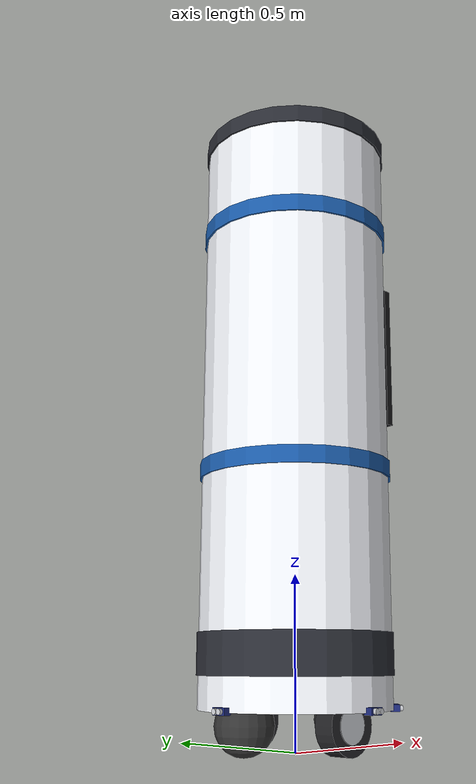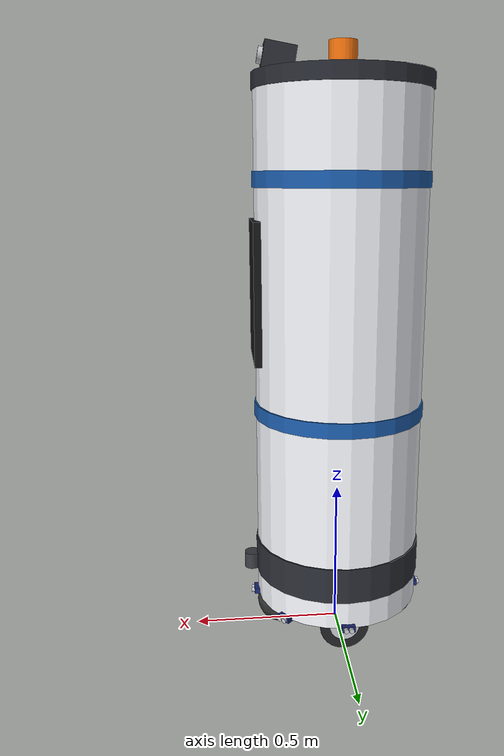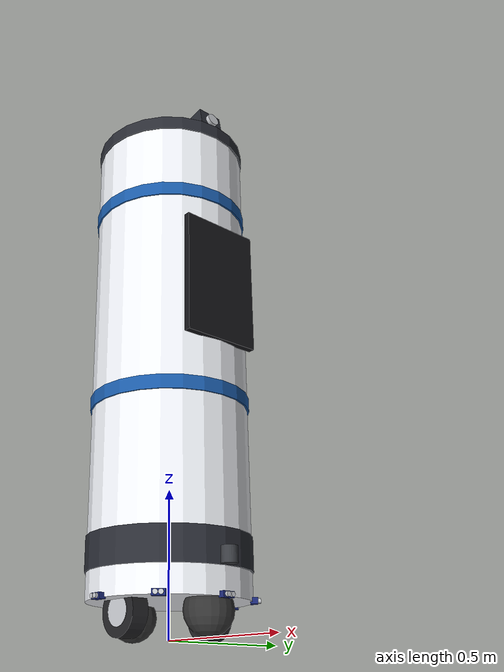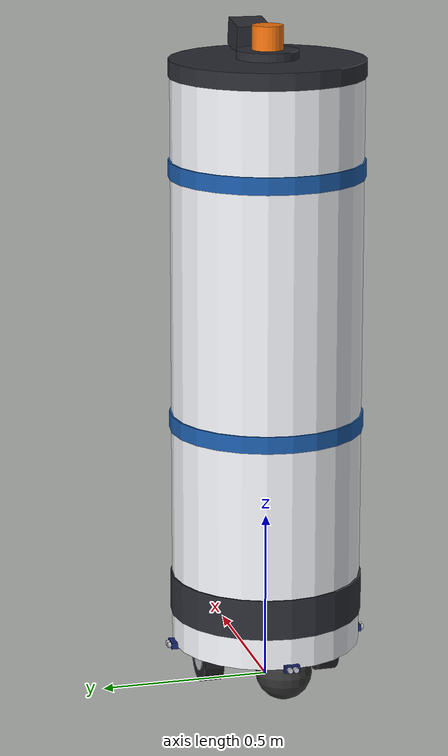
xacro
<?xml version="1.0"?>
<robot xmlns:xacro="http://www.ros.org/wiki/xacro" name="databot">
<!-- 基础部分（含全局材质调色板） -->
<xacro:include filename="$(find datarobot_description)/urdf/databot/base.urdf.xacro"/>
<!-- 传感器部分 -->
<xacro:include filename="$(find datarobot_description)/urdf/databot/senser/imu.urdf.xacro"/>
<xacro:include filename="$(find datarobot_description)/urdf/databot/senser/camera.urdf.xacro"/>
<xacro:include filename="$(find datarobot_description)/urdf/databot/senser/laser.urdf.xacro"/>
<xacro:include filename="$(find datarobot_description)/urdf/databot/senser/ultrasonic.urdf.xacro"/>
<!-- 执行器部分 -->
<xacro:include filename="$(find datarobot_description)/urdf/databot/actuator/wheel.urdf.xacro"/>
<xacro:include filename="$(find datarobot_description)/urdf/databot/actuator/caster.urdf.xacro"/>
<!-- Gazebo 仿真配置 -->
<xacro:include filename="$(find datarobot_description)/urdf/databot/gazebo.urdf.xacro"/>

<!-- 轮子几何在此统一定义, base 与 wheel 共用, 避免两处不一致导致模型悬空或陷地 -->
<xacro:property name="wheel_radius" value="0.083"/>
<xacro:property name="wheel_z" value="-0.17"/>

<!-- 地平面: base_link 高出地面的高度. 只在这里算一次, 再传给 base_xacro 和
     caster_xacro, 保证"地面在哪"只有一个真值来源 -->
<xacro:property name="base_height" value="${-wheel_z + wheel_radius}"/>

<!-- 从动轮半径. 与 wheel_radius 解耦: 只要关节 z 按
     (caster_radius - base_height) 推导, 半径取任何值都能触地,
     不必等于驱动轮半径 -->
<xacro:property name="caster_radius" value="0.083"/>

<xacro:base_xacro length="1.70" radius="0.28" base_height="${base_height}"/>

<!-- IMU：装在车体中轴顶部内腔（实机对应主控板上方的 IMU 模块） -->
<xacro:imu_xacro xyz="0.0 0.0 0.02"/>

<!-- 顶部云台相机：顶盖前沿，下俯 10°。camera_enabled:=false 可关掉传感器渲染省算力 -->
<xacro:arg name="camera_enabled" default="true"/>
<xacro:camera_xacro xyz="0.20 0.0 1.656" rpy="0.0 -0.17 0.0" enabled="$(arg camera_enabled)"/>

<!-- 激光雷达：车头外伸支架上，x=0.30 在车体半径(0.28)之外，避免自遮挡 -->
<xacro:laser_xacro xyz="0.30 0.0 0.0"/>

<!-- 超声波 ×6：z=-0.13 → 离地约 0.12 m，专管激光盲区以下的低矮障碍
     （车位挡轮杆、路缘等）。前 3 + 左右各 1 + 后 1，覆盖全向 -->
<xacro:ultrasonic_xacro name="us_front"        xyz="0.283 0.0 -0.13"    yaw="0.0"/>
<xacro:ultrasonic_xacro name="us_front_left"   xyz="0.20 0.20 -0.13"    yaw="0.7854"/>
<xacro:ultrasonic_xacro name="us_front_right"  xyz="0.20 -0.20 -0.13"   yaw="-0.7854"/>
<xacro:ultrasonic_xacro name="us_left"         xyz="0.0 0.283 -0.13"    yaw="1.5708"/>
<xacro:ultrasonic_xacro name="us_right"        xyz="0.0 -0.283 -0.13"   yaw="-1.5708"/>
<xacro:ultrasonic_xacro name="us_rear"         xyz="-0.283 0.0 -0.13"   yaw="3.14159"/>

<xacro:wheel_xacro wheel_name="left_wheel"
                   xyz="0 0.179 ${wheel_z}" radius="${wheel_radius}"/>
<xacro:wheel_xacro wheel_name="right_wheel"
                   xyz="0 -0.179 ${wheel_z}" radius="${wheel_radius}"/>

<!-- 从动轮(前后支撑). z 由宏内部按 caster_radius - base_height 推导, 这里只给
     平面位置 xy. 前后必须传同样的参数, 否则两个轮子不落同一地平面 -->
<xacro:caster_xacro caster_name="front_caster"
                    xy="0.20 0.0"
                    caster_radius="${caster_radius}" base_height="${base_height}"/>
<xacro:caster_xacro caster_name="rear_caster"
                    xy="-0.20 0.0"
                    caster_radius="${caster_radius}" base_height="${base_height}"/>

<!-- 调用 Gazebo 配置宏（仅在仿真时使用）-->
<xacro:gazebo_diff_drive/>
    <xacro:gazebo_joint_state_publisher/>

</robot>

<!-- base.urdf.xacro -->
<robot xmlns:xacro="http://www.ros.org/wiki/xacro" >
    <!-- 全局材质调色板：所有子文件只按名字引用，颜色改这一处即可。
         注意 alpha 全部为 1.0：半透明车体会让 Gazebo 里的渲染出现透视串面 -->
    <material name="mat_body">
        <color rgba="0.92 0.93 0.95 1.0"/>   <!-- 珠白车身 -->
    </material>
    <material name="mat_accent">
        <color rgba="0.10 0.35 0.65 1.0"/>   <!-- 科技蓝饰环 -->
    </material>
    <material name="mat_dark">
        <color rgba="0.16 0.17 0.20 1.0"/>   <!-- 深灰：裙边/顶盖/传感器舱 -->
    </material>
    <material name="mat_orange">
        <color rgba="0.95 0.45 0.05 1.0"/>   <!-- 警示橙：顶部信标 -->
    </material>
    <material name="mat_panel">
        <color rgba="0.08 0.08 0.09 1.0"/>   <!-- 前脸面板 -->
    </material>
    <material name="mat_silver">
        <color rgba="0.75 0.76 0.78 1.0"/>   <!-- 轮毂/镜头圈 -->
    </material>
    <material name="mat_tire">
        <color rgba="0.13 0.13 0.14 1.0"/>   <!-- 橡胶轮胎 -->
    </material>
    <material name="mat_lidar">
        <color rgba="0.22 0.23 0.25 1.0"/>   <!-- 激光雷达 -->
    </material>
    <material name="mat_imu">
        <color rgba="0.00 0.40 0.20 1.0"/>   <!-- IMU 模块 PCB 绿 -->
    </material>
    <material name="mat_us">
        <color rgba="0.10 0.15 0.45 1.0"/>   <!-- 超声波模块 深蓝 -->
    </material>

    <!-- base_height: base_link 高出地面的高度, 由 datarobot.urdf.xacro 统一算出并传入
         (= -wheel_z + wheel_radius). 地平面只在那一处决定, 从动轮等部件的 z
         都相对它推导, 避免多处各写一份导致模型悬空或陷地 -->
    <xacro:macro name="base_xacro" params="length radius base_height">
        <!-- 地面投影坐标系, 整个模型的根.
             里程计发布 odom -> base_footprint, 缺了它 TF 树会断成两截 -->
        <link name="base_footprint"/>

        <joint name="base_joint" type="fixed">
            <parent link="base_footprint"/>
            <child link="base_link"/>
            <!-- 轮子底部即地面: base_link 高出地面 base_height -->
            <origin xyz="0.0 0.0 ${base_height}" rpy="0.0 0.0 0.0"/>
        </joint>

        <!-- 机器人的身体部分 -->
        <link name="base_link">
            <!-- ===== 外观（美化版：白塔身 + 蓝饰环 + 深灰顶盖 + 橙色信标）===== -->
            <!-- 主塔身：圆柱轮廓保持不变，碰撞/惯性在下方单独定义 -->
            <visual name="body">
                <origin xyz="0.0 0.0 0.716" rpy="0.0 0.0 0.0"/>
                <geometry>
                    <cylinder radius="${radius}" length="${length}"/>
                </geometry>
                <material name="mat_body"/>
            </visual>
            <!-- 底部裙边：盖住轮舱接缝 -->
            <visual name="skirt">
                <origin xyz="0.0 0.0 0.02" rpy="0.0 0.0 0.0"/>
                <geometry>
                    <cylinder radius="${radius + 0.005}" length="0.12"/>
                </geometry>
                <material name="mat_dark"/>
            </visual>
            <!-- 上下两道蓝色饰环 -->
            <visual name="ring_lower">
                <origin xyz="0.0 0.0 0.55" rpy="0.0 0.0 0.0"/>
                <geometry>
                    <cylinder radius="${radius + 0.006}" length="0.05"/>
                </geometry>
                <material name="mat_accent"/>
            </visual>
            <visual name="ring_upper">
                <origin xyz="0.0 0.0 1.30" rpy="0.0 0.0 0.0"/>
                <geometry>
                    <cylinder radius="${radius + 0.006}" length="0.05"/>
                </geometry>
                <material name="mat_accent"/>
            </visual>
            <!-- 前脸面板：标识车头方向 -->
            <visual name="front_panel">
                <origin xyz="${radius - 0.002} 0.0 0.95" rpy="0.0 0.0 0.0"/>
                <geometry>
                    <box size="0.024 0.30 0.45"/>
                </geometry>
                <material name="mat_panel"/>
            </visual>
            <!-- 顶盖 -->
            <visual name="top_cap">
                <origin xyz="0.0 0.0 ${length - 0.109}" rpy="0.0 0.0 0.0"/>
                <geometry>
                    <cylinder radius="${radius + 0.005}" length="0.05"/>
                </geometry>
                <material name="mat_dark"/>
            </visual>
            <!-- 顶部信标底座 + 灯 -->
            <visual name="beacon_base">
                <origin xyz="0.0 0.0 ${length - 0.0715}" rpy="0.0 0.0 0.0"/>
                <geometry>
                    <cylinder radius="0.09" length="0.025"/>
                </geometry>
                <material name="mat_dark"/>
            </visual>
            <visual name="beacon">
                <origin xyz="0.0 0.0 ${length - 0.024}" rpy="0.0 0.0 0.0"/>
                <geometry>
                    <cylinder radius="0.045" length="0.07"/>
                </geometry>
                <material name="mat_orange"/>
            </visual>

            <!-- 碰撞体描述（用于 Gazebo 物理仿真）-->
            <!-- 使用更矮的碰撞体来降低重心,避免倒地.
                 ⚠️ 碰撞几何是历史验证过的（重心/倾覆/雷达遮挡特性都依赖它），美化不动它 -->
            <collision>
                <origin xyz="0.0 0.0 0.25" rpy="0.0 0.0 0.0"/>
                <geometry>
                    <cylinder radius="${radius}" length="0.5"/>
                </geometry>
            </collision>

            <!-- 惯性参数（用于 Gazebo 物理仿真）-->
            <inertial>
                <!-- 重心位置设置在接近轮轴的位置 -->
                <origin xyz="0.0 0.0 0.1" rpy="0.0 0.0 0.0"/>
                <!-- 机器人本体质量约 50kg -->
                <mass value="50.0"/>
                <!-- 调整惯性矩阵以匹配更低的重心 -->
                <inertia ixx="5.5" ixy="0.0" ixz="0.0"
                         iyy="5.5" iyz="0.0"
                         izz="1.96"/>
            </inertial>
        </link>
    </xacro:macro>

</robot>

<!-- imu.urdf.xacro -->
<robot xmlns:xacro="http://www.ros.org/wiki/xacro" >
    <xacro:macro name="imu_xacro" params="xyz">
        <!-- 机器人的IMU部分 惯性测量传感器 -->
        <link name="imu_link">
            <!-- 外观：PCB 小模块 -->
            <visual>
                <origin xyz="0.0 0.0 0.0" rpy="0.0 0.0 0.0"/>
                <geometry>
                    <box size="0.02 0.02 0.02"/>
                </geometry>
                <material name="mat_imu"/>
            </visual>

            <!-- 惯性参数：传感器本体很轻，球体近似 -->
            <inertial>
                <origin xyz="0.0 0.0 0.0" rpy="0.0 0.0 0.0"/>
                <mass value="0.02"/>
                <inertia ixx="1e-06" ixy="0.0" ixz="0.0"
                         iyy="1e-06" iyz="0.0"
                         izz="1e-06"/>
            </inertial>
        </link>

        <!-- 机器人的关节，用于组合机器人的部件 -->
        <joint name="imu_joint" type="fixed">
            <parent link="base_link"/>
            <child link="imu_link"/>
            <origin xyz="${xyz}" rpy="0.0 0.0 0.0"/>
        </joint>

        <gazebo reference="imu_link">
            <sensor name="imu_sensor" type="imu">
                <always_on>1</always_on>
                <update_rate>50</update_rate>
                <visualize>false</visualize>
                <gz_frame_id>imu_link</gz_frame_id>
            </sensor>
        </gazebo>
    </xacro:macro>

</robot>

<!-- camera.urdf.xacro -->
<robot xmlns:xacro="http://www.ros.org/wiki/xacro" >
    <xacro:macro name="camera_xacro" params="xyz rpy:='0 0 0' enabled:=true">
        <!-- 顶端摄像头（云台造型：深灰舱体 + 银色镜头圈）-->
        <link name="camera_link">
            <visual name="pod">
                <origin xyz="0.0 0.0 0.0" rpy="0.0 0.0 0.0"/>
                <geometry>
                    <box size="0.10 0.10 0.08"/>
                </geometry>
                <material name="mat_dark"/>
            </visual>
            <visual name="lens">
                <origin xyz="0.055 0.0 0.0" rpy="0.0 1.57079 0.0"/>
                <geometry>
                    <cylinder radius="0.025" length="0.02"/>
                </geometry>
                <material name="mat_silver"/>
            </visual>
        </link>

        <!-- 机器人的关节，用于组合机器人的部件。
             rpy 支持俯仰（如 0 -0.17 0 = 下俯 10°），默认水平朝前 -->
        <joint name="camera_joint" type="fixed">
            <parent link="base_link"/>
            <child link="camera_link"/>
            <origin xyz="${xyz}" rpy="${rpy}"/>
        </joint>

        <xacro:if value="${enabled}">
            <gazebo reference="camera_link">
                <sensor name="camera_sensor" type="camera">
                    <pose>0 0 0 0 0 0</pose>
                    <always_on>1</always_on>
                    <update_rate>5</update_rate>
                    <visualize>false</visualize>
                    <gz_frame_id>camera_link</gz_frame_id>
                    <camera>
                        <horizontal_fov>1.2</horizontal_fov>
                        <image>
                            <width>320</width>
                            <height>240</height>
                            <format>R8G8B8</format>
                        </image>
                        <clip>
                            <near>0.05</near>
                            <far>30</far>
                        </clip>
                    </camera>
                </sensor>
            </gazebo>
        </xacro:if>
    </xacro:macro>

</robot>

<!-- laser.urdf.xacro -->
<robot xmlns:xacro="http://www.ros.org/wiki/xacro" >
    <xacro:macro name="laser_xacro" params="xyz">
        <!-- 激光雷达：深灰筒身 + 支架 -->
        <link name="laser_link">
            <!-- 外观：雷达本体 -->
            <visual>
                <origin xyz="0.0 0.0 -0.01" rpy="0.0 0.0 0.0"/>
                <geometry>
                    <cylinder radius="0.0275" length="0.055"/>
                </geometry>
                <material name="mat_lidar"/>
            </visual>
            <!-- 外观：从车身表面伸出的支架 -->
            <visual name="bracket">
                <origin xyz="-0.045 0.0 -0.01" rpy="0.0 0.0 0.0"/>
                <geometry>
                    <box size="0.07 0.04 0.04"/>
                </geometry>
                <material name="mat_dark"/>
            </visual>

            <!-- 碰撞体描述（用于 Gazebo 物理仿真）-->
            <collision>
                <origin xyz="0.0 0.0 -0.01" rpy="0.0 0.0 0.0"/>
                <geometry>
                    <cylinder radius="0.0275" length="0.055"/>
                </geometry>
            </collision>

            <!-- 惯性参数（用于 Gazebo 物理仿真）-->
            <inertial>
                <origin xyz="0.0 0.0 -0.01" rpy="0.0 0.0 0.0"/>
                <!-- 激光雷达质量约 0.5kg -->
                <mass value="0.5"/>
                <!-- 圆柱体的惯性矩阵 -->
                <inertia ixx="0.0003" ixy="0.0" ixz="0.0"
                         iyy="0.0003" iyz="0.0"
                         izz="0.0002"/>
            </inertial>
        </link>

        <!-- 机器人的关节，用于组合机器人的部件 -->
        <joint name="laser_joint" type="fixed">
            <parent link="base_link"/>
            <child link="laser_link"/>
            <!-- xyz 由调用方传入; 写成空串会让 urdf 解析器抛异常, robot_state_publisher 直接 abort -->
            <origin xyz="${xyz}" rpy="0.0 0.0 0.0"/>
        </joint>

        <gazebo reference="laser_link">
            <sensor name="laser_sensor" type="gpu_lidar">
                <pose>0 0 0 0 0 0</pose>
                <visualize>true</visualize>
                <update_rate>10</update_rate>
                <gz_frame_id>laser_link</gz_frame_id>
                <lidar>
                    <scan>
                        <horizontal>
                            <samples>360</samples>
                            <resolution>1</resolution>
                            <min_angle>0.0</min_angle>
                            <max_angle>6.28318</max_angle>
                        </horizontal>
                    </scan>
                    <range>
                        <min>0.15</min>
                        <max>12.0</max>
                        <resolution>0.01</resolution>
                    </range>
                    <noise>
                        <type>gaussian</type>
                        <mean>0.0</mean>
                        <stddev>0.01</stddev>
                    </noise>
                </lidar>
                <always_on>1</always_on>
            </sensor>
        </gazebo>
    </xacro:macro>

</robot>

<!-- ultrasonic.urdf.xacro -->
<robot xmlns:xacro="http://www.ros.org/wiki/xacro" >
    <xacro:macro name="ultrasonic_xacro" params="name xyz yaw">
        <link name="${name}_link">
            <!-- 外观：模块盒体 -->
            <visual name="pcb">
                <origin xyz="0.0 0.0 0.0" rpy="0.0 0.0 0.0"/>
                <geometry>
                    <box size="0.025 0.045 0.02"/>
                </geometry>
                <material name="mat_us"/>
            </visual>
            <!-- 外观：双探头（沿 +x 朝外）-->
            <visual name="eye_a">
                <origin xyz="0.016 0.009 0.0" rpy="0.0 1.57079 0.0"/>
                <geometry>
                    <cylinder radius="0.008" length="0.012"/>
                </geometry>
                <material name="mat_silver"/>
            </visual>
            <visual name="eye_b">
                <origin xyz="0.016 -0.009 0.0" rpy="0.0 1.57079 0.0"/>
                <geometry>
                    <cylinder radius="0.008" length="0.012"/>
                </geometry>
                <material name="mat_silver"/>
            </visual>

            <!-- 碰撞体（微小，避免与车身穿插即可）-->
            <collision>
                <origin xyz="0.0 0.0 0.0" rpy="0.0 0.0 0.0"/>
                <geometry>
                    <box size="0.025 0.045 0.02"/>
                </geometry>
            </collision>

            <!-- 惯性参数 -->
            <inertial>
                <origin xyz="0.0 0.0 0.0" rpy="0.0 0.0 0.0"/>
                <mass value="0.01"/>
                <inertia ixx="1e-06" ixy="0.0" ixz="0.0"
                         iyy="1e-06" iyz="0.0"
                         izz="1e-06"/>
            </inertial>
        </link>

        <!-- 固定在车身表面，yaw 决定朝向 -->
        <joint name="${name}_joint" type="fixed">
            <parent link="base_link"/>
            <child link="${name}_link"/>
            <origin xyz="${xyz}" rpy="0.0 0.0 ${yaw}"/>
        </joint>

        <!-- Gazebo 传感器：3 束窄视场 gpu_lidar 模拟 15° 锥形单回波.
             ⚠️ samples 必须 ≥2：gpu_lidar 在 samples=1 时内部除零，射线会静默不发
             （oomwoo-one 项目同款坑）。量程 0.03–4.0 m 对齐 HC-SR04；10 Hz 对齐实机节流 -->
        <gazebo reference="${name}_link">
            <sensor name="${name}" type="gpu_lidar">
                <pose>0 0 0 0 0 0</pose>
                <visualize>false</visualize>
                <update_rate>10</update_rate>
                <gz_frame_id>${name}_link</gz_frame_id>
                <lidar>
                    <scan>
                        <horizontal>
                            <samples>3</samples>
                            <resolution>1</resolution>
                            <min_angle>-0.13</min_angle>
                            <max_angle>0.13</max_angle>
                        </horizontal>
                    </scan>
                    <range>
                        <min>0.03</min>
                        <max>4.0</max>
                        <resolution>0.01</resolution>
                    </range>
                    <noise>
                        <type>gaussian</type>
                        <mean>0.0</mean>
                        <stddev>0.02</stddev>
                    </noise>
                </lidar>
                <always_on>1</always_on>
            </sensor>
        </gazebo>
    </xacro:macro>

</robot>

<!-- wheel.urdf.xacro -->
<robot xmlns:xacro="http://www.ros.org/wiki/xacro" >
    <xacro:macro name="wheel_xacro" params="wheel_name xyz radius:=0.083">
        <!-- 机器人的轮子：橡胶胎 + 银色轮毂 双层外观 -->
        <link name="${wheel_name}_link">
            <!-- 外观：外胎 -->
            <visual name="tire">
                <origin xyz="0.0 0.0 0.0" rpy="1.57079 0.0 0.0"/>
                <geometry>
                    <cylinder radius="${radius}" length="0.06"/>
                </geometry>
                <material name="mat_tire"/>
            </visual>
            <!-- 外观：轮毂（比外胎略宽，从两侧都能看到银色盘面）-->
            <visual name="hub">
                <origin xyz="0.0 0.0 0.0" rpy="1.57079 0.0 0.0"/>
                <geometry>
                    <cylinder radius="${radius * 0.6}" length="0.064"/>
                </geometry>
                <material name="mat_silver"/>
            </visual>

            <!-- 碰撞体描述（用于 Gazebo 物理仿真）-->
            <collision>
                <origin xyz="0.0 0.0 0.0" rpy="1.57079 0.0 0.0"/>
                <geometry>
                    <cylinder radius="${radius}" length="0.06"/>
                </geometry>
            </collision>

            <!-- 惯性参数（用于 Gazebo 物理仿真）-->
            <inertial>
                <origin xyz="0.0 0.0 0.0" rpy="0.0 0.0 0.0"/>
                <!-- 单个轮子质量约 2kg -->
                <mass value="2.0"/>
                <!-- 圆柱体的惯性矩阵（绕Y轴旋转）-->
                <!-- Ixx = Izz = (1/12)*m*(3*r^2 + h^2) -->
                <!-- Iyy = (1/2)*m*r^2 -->
                <inertia ixx="0.0156" ixy="0.0" ixz="0.0"
                         iyy="0.0069" iyz="0.0"
                         izz="0.0156"/>
            </inertial>
        </link>

        <!-- 机器人的关节，用于组合机器人的部件 -->
        <joint name="${wheel_name}_joint" type="continuous">
            <parent link="base_link"/>
            <child link="${wheel_name}_link"/>
            <origin xyz="${xyz}" rpy="0.0 0.0 0.0"/>
            <!-- 旋转方向 -->
            <axis xyz="0 1 0"/>
        </joint>
    </xacro:macro>

</robot>

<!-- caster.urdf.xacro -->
<robot xmlns:xacro="http://www.ros.org/wiki/xacro">
    <xacro:macro name="caster_xacro" params="caster_name xy caster_radius base_height">
        <!-- 从动轮连杆 -->
        <link name="${caster_name}_link">
            <!-- 外观描述 -->
            <visual>
                <origin xyz="0.0 0.0 0.0" rpy="0.0 0.0 0.0"/>
                <geometry>
                    <sphere radius="${caster_radius}"/>
                </geometry>
                <material name="caster_black">
                    <color rgba="0.2 0.2 0.2 1.0"/>
                </material>
            </visual>

            <!-- 碰撞体描述 -->
            <collision>
                <origin xyz="0.0 0.0 0.0" rpy="0.0 0.0 0.0"/>
                <geometry>
                    <sphere radius="${caster_radius}"/>
                </geometry>
            </collision>

            <!-- 惯性参数 -->
            <xacro:property name="caster_mass" value="0.5"/>
            <xacro:property name="caster_inertia" value="${0.4 * caster_mass * caster_radius * caster_radius}"/>
            <inertial>
                <origin xyz="0.0 0.0 0.0" rpy="0.0 0.0 0.0"/>
                <mass value="${caster_mass}"/>
                <!-- 球体的惯性矩阵: I = (2/5)*m*r^2 -->
                <inertia ixx="${caster_inertia}" ixy="0.0" ixz="0.0"
                         iyy="${caster_inertia}" iyz="0.0"
                         izz="${caster_inertia}"/>
            </inertial>
        </link>

        <!-- 从动轮关节 -->
        <joint name="${caster_name}_joint" type="fixed">
            <parent link="base_link"/>
            <child link="${caster_name}_link"/>
            <origin xyz="${xy} ${caster_radius - base_height}" rpy="0.0 0.0 0.0"/>
        </joint>

        <!-- Gazebo 从动轮摩擦力设置 -->
        <gazebo reference="${caster_name}_link">
            <!-- 低摩擦力,允许自由滚动 -->
            <mu1>0.0</mu1>
            <mu2>0.0</mu2>
            <kp>1000000.0</kp>
            <kd>10.0</kd>
            <minDepth>0.001</minDepth>
            <maxVel>10.0</maxVel>
            <material>Gazebo/Black</material>
        </gazebo>
    </xacro:macro>
</robot>
